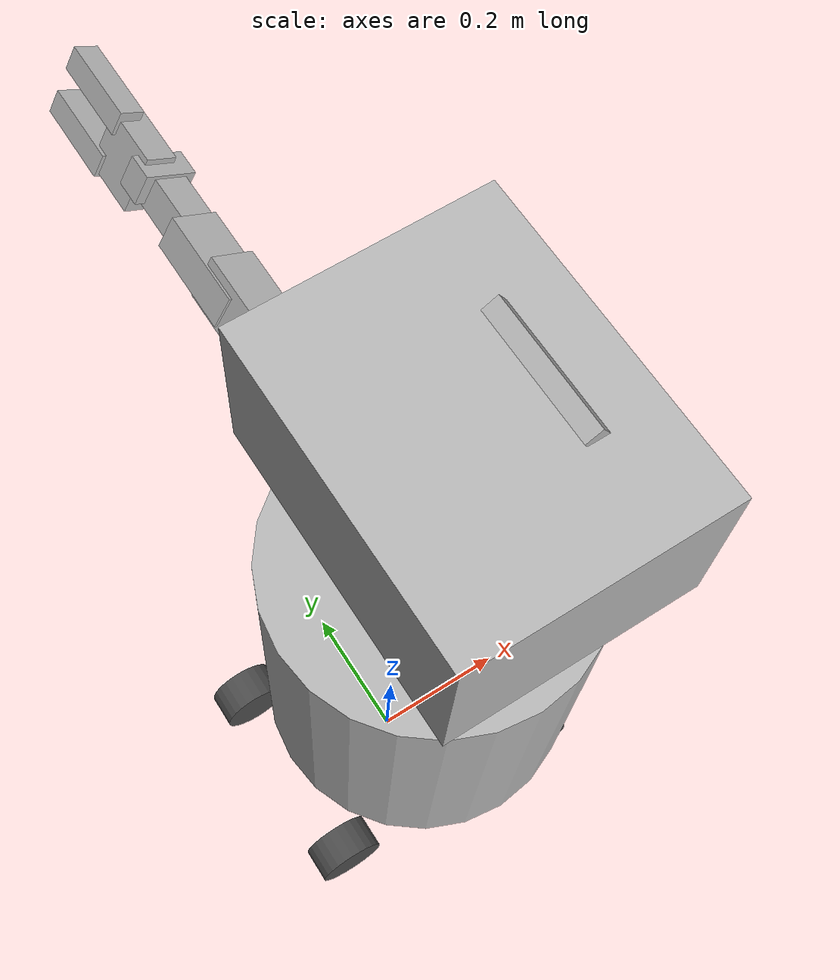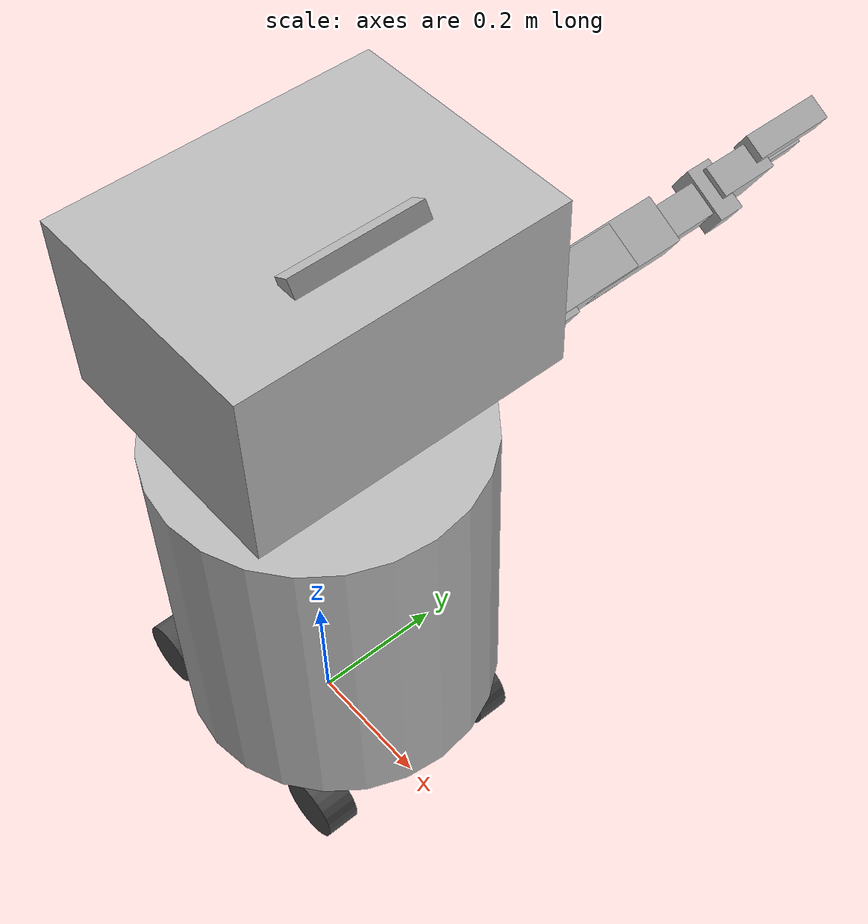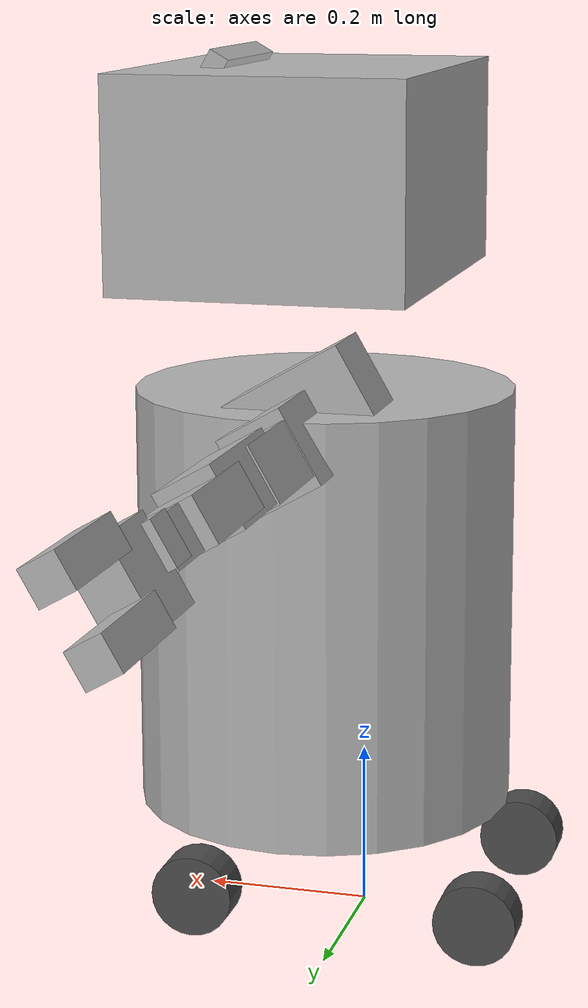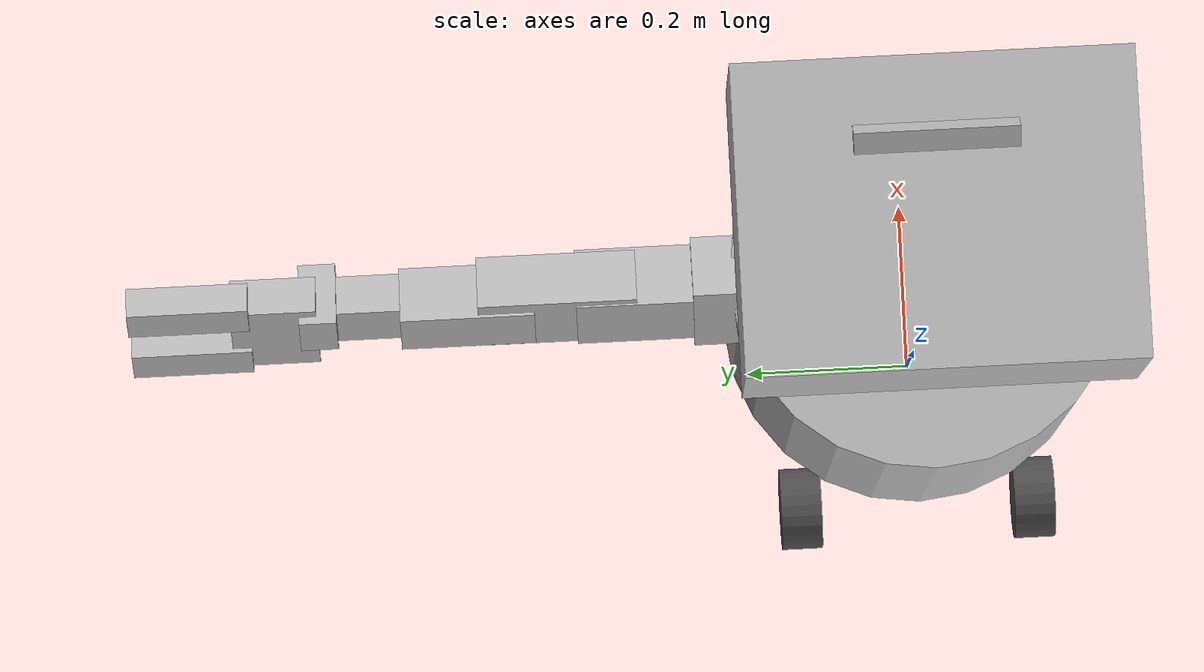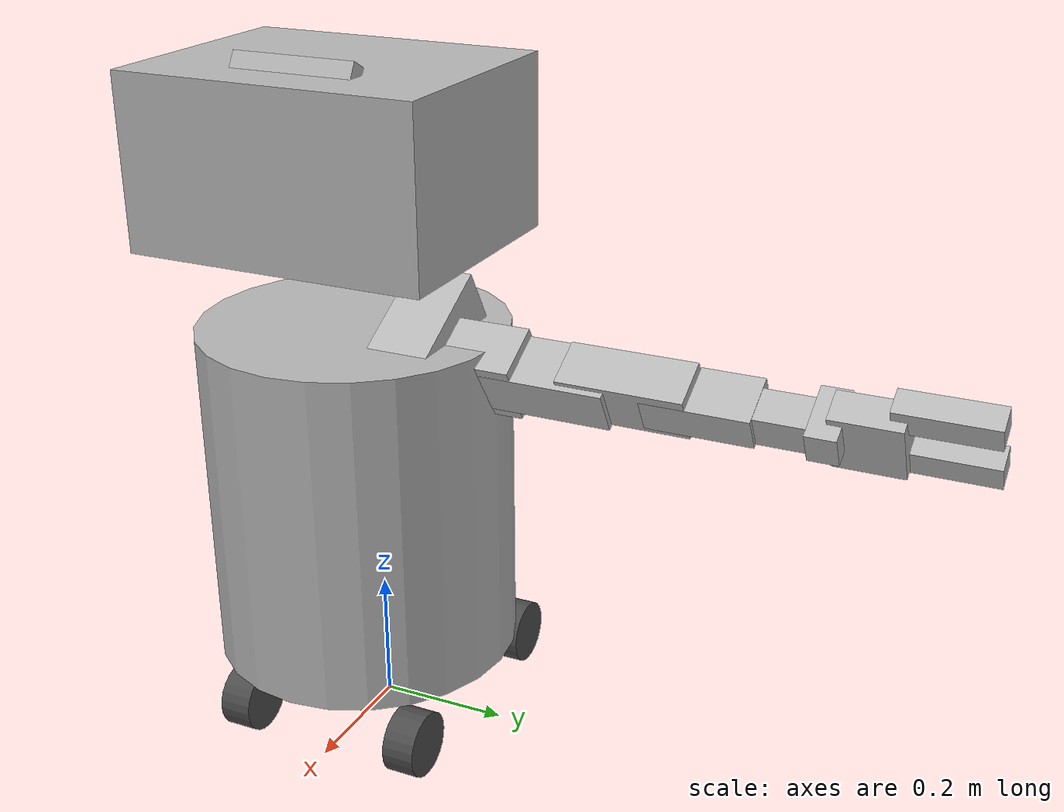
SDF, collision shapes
<sdf version="1.6">
 <model name="mbot">
  <link name="base_link">
   <inertial>
    <pose>-1e-06 2e-06 0.000729 0 -0 0</pose>
    <mass>40.241</mass>
    <inertia>
     <ixx>1.52277</ixx>
     <ixy>5.81e-06</ixy>
     <ixz>0</ixz>
     <iyy>3.15312</iyy>
     <iyz>0.00753425</iyz>
     <izz>3.07233</izz>
    </inertia>
   </inertial>
   <sensor name="rear_hokuyo_sensor" type="ray">
    <visualize>0</visualize>
    <update_rate>34.5</update_rate>
    <ray>
     <scan>
      <horizontal>
       <samples>720</samples>
       <resolution>1</resolution>
       <min_angle>-1.5708</min_angle>
       <max_angle>1.5708</max_angle>
      </horizontal>
      <vertical><samples>1</samples><min_angle>0</min_angle><max_angle>0</max_angle></vertical>
     </scan>
     <range><min>0.023</min><max>60</max><resolution>0.001</resolution></range>
     <noise><type>gaussian</type><mean>0</mean><stddev>0.01</stddev></noise>
    </ray>
    <plugin name="gazebo_ros_rear_hokuyo_controller" filename="libgazebo_ros_laser.so">
     <topicName>/scan_rear</topicName>
     <frameName>base_laser_rear_link</frameName>
     <robotNamespace>/</robotNamespace>
    </plugin>
    <pose>-0.2795 0 0.1335 -3.14159 -0 -3.14159</pose>
   </sensor>
   <sensor name="front_hokuyo_sensor" type="ray">
    <visualize>0</visualize>
    <update_rate>4.3</update_rate>
    <ray>
     <scan>
      <horizontal>
       <samples>512</samples>
       <resolution>1</resolution>
       <min_angle>-1.5708</min_angle>
       <max_angle>1.5708</max_angle>
      </horizontal>
      <vertical><samples>1</samples><min_angle>0</min_angle><max_angle>0</max_angle></vertical>
     </scan>
     <range><min>0.0199999</min><max>5.6</max><resolution>0.001</resolution></range>
     <noise><type>gaussian</type><mean>0</mean><stddev>0.01</stddev></noise>
    </ray>
    <plugin name="gazebo_ros_front_hokuyo_controller" filename="libgazebo_ros_laser.so">
     <topicName>/scan_front</topicName>
     <frameName>base_laser_front_link</frameName>
     <robotNamespace>/</robotNamespace>
    </plugin>
    <pose>0.2785 0 0.1335 0 -0 0</pose>
   </sensor>
   <visual name="base_link_visual">
    <pose>0 0 0.025 0 -0 0</pose>
    <geometry><mesh><uri>file://isr-testbed/mbot/mbot_body/mbot_body.dae</uri></mesh></geometry>
    <material>
     <script>
      <name>Gazebo/DepthMapVS</name>
      <uri>package://mbot_description/media/materials/scripts/gazebo.material</uri>
     </script>
     <shader type="vertex"><normal_map>__default__</normal_map></shader>
    </material>
   </visual>
   <collision name="base_link_collision">
    <pose>0.05 0 0.4 0 -0 0</pose>
    <geometry><cylinder><radius>0.23</radius><length>0.515</length></cylinder></geometry>
    <surface>
     <friction>
      <ode><mu>1</mu><mu2>1</mu2><fdir1>0 0 0</fdir1><slip1>0</slip1><slip2>0</slip2></ode>
      <torsional>
       <coefficient>1</coefficient>
       <patch_radius>0</patch_radius>
       <surface_radius>0</surface_radius>
       <use_patch_radius>1</use_patch_radius>
       <ode><slip>0</slip></ode>
      </torsional>
     </friction>
     <bounce><restitution_coefficient>0</restitution_coefficient><threshold>1e+06</threshold></bounce>
     <contact>
      <collide_without_contact>0</collide_without_contact>
      <collide_without_contact_bitmask>1</collide_without_contact_bitmask>
      <collide_bitmask>1</collide_bitmask>
      <ode>
       <soft_cfm>0</soft_cfm>
       <soft_erp>0.2</soft_erp>
       <kp>1e+13</kp>
       <kd>1</kd>
       <max_vel>0.01</max_vel>
       <min_depth>0</min_depth>
      </ode>
      <bullet>
       <split_impulse>1</split_impulse>
       <split_impulse_penetration_threshold>-0.01</split_impulse_penetration_threshold>
       <soft_cfm>0</soft_cfm>
       <soft_erp>0.2</soft_erp>
       <kp>1e+13</kp>
       <kd>1</kd>
      </bullet>
     </contact>
    </surface>
   </collision>
   <collision name="base_link_fixed_joint_lump__left_arm_base_link_collision_1">
    <pose>0.033028 0.117 0.625729 1.5708 1.04934 3.14159</pose>
    <geometry><box><size>0.154 0.177 0.094</size></box></geometry>
    <surface>
     <friction>
      <ode><mu>1</mu><mu2>1</mu2><fdir1>0 0 0</fdir1><slip1>0</slip1><slip2>0</slip2></ode>
      <torsional>
       <coefficient>1</coefficient>
       <patch_radius>0</patch_radius>
       <surface_radius>0</surface_radius>
       <use_patch_radius>1</use_patch_radius>
       <ode><slip>0</slip></ode>
      </torsional>
     </friction>
     <bounce><restitution_coefficient>0</restitution_coefficient><threshold>1e+06</threshold></bounce>
     <contact>
      <collide_without_contact>0</collide_without_contact>
      <collide_without_contact_bitmask>1</collide_without_contact_bitmask>
      <collide_bitmask>1</collide_bitmask>
      <ode>
       <soft_cfm>0</soft_cfm>
       <soft_erp>0.2</soft_erp>
       <kp>1e+13</kp>
       <kd>1</kd>
       <max_vel>0.01</max_vel>
       <min_depth>0</min_depth>
      </ode>
      <bullet>
       <split_impulse>1</split_impulse>
       <split_impulse_penetration_threshold>-0.01</split_impulse_penetration_threshold>
       <soft_cfm>0</soft_cfm>
       <soft_erp>0.2</soft_erp>
       <kp>1e+13</kp>
       <kd>1</kd>
      </bullet>
     </contact>
    </surface>
   </collision>
  </link>
  <link name="front_left_wheel_link">
   <pose>-0.175 0.14429 0.05 0 -0 0</pose>
   <inertial>
    <mass>2.3</mass>
    <inertia>
     <ixx>0.0033212</ixx>
     <ixy>0</ixy>
     <ixz>0</ixz>
     <iyy>0.0066424</iyy>
     <iyz>0</iyz>
     <izz>0.0033212</izz>
    </inertia>
   </inertial>
   <visual name="front_left_wheel_link_visual">
    <pose>0 0 0 1.5708 -0 0</pose>
    <geometry><cylinder><length>0.05</length><radius>0.05</radius></cylinder></geometry>
    <material>
     <script><name>Gazebo/DarkGrey</name><uri>file://media/materials/scripts/gazebo.material</uri></script>
     <ambient>0.175 0.175 0.175 1</ambient>
     <diffuse>0.175 0.175 0.175 1</diffuse>
     <specular>0.175 0.175 0.175 1</specular>
     <emissive>0 0 0 1</emissive>
    </material>
   </visual>
   <collision name="front_left_wheel_link_collision">
    <pose>0 0 0 1.5708 -0 0</pose>
    <geometry><cylinder><radius>0.05</radius><length>0.05</length></cylinder></geometry>
    <surface>
     <friction>
      <ode><mu>0</mu><mu2>0</mu2><fdir1>0 0 0</fdir1><slip1>0</slip1><slip2>0</slip2></ode>
      <torsional>
       <coefficient>1</coefficient>
       <patch_radius>0</patch_radius>
       <surface_radius>0</surface_radius>
       <use_patch_radius>1</use_patch_radius>
       <ode><slip>0</slip></ode>
      </torsional>
     </friction>
     <bounce><restitution_coefficient>0</restitution_coefficient><threshold>1e+06</threshold></bounce>
     <contact>
      <collide_without_contact>0</collide_without_contact>
      <collide_without_contact_bitmask>1</collide_without_contact_bitmask>
      <collide_bitmask>1</collide_bitmask>
      <ode>
       <soft_cfm>0</soft_cfm>
       <soft_erp>0.2</soft_erp>
       <kp>1e+13</kp>
       <kd>1</kd>
       <max_vel>0.01</max_vel>
       <min_depth>0</min_depth>
      </ode>
      <bullet>
       <split_impulse>1</split_impulse>
       <split_impulse_penetration_threshold>-0.01</split_impulse_penetration_threshold>
       <soft_cfm>0</soft_cfm>
       <soft_erp>0.2</soft_erp>
       <kp>1e+13</kp>
       <kd>1</kd>
      </bullet>
     </contact>
    </surface>
   </collision>
  </link>
  <link name="front_right_wheel_link">
   <pose>0.175 0.14429 0.05 0 -0 0</pose>
   <inertial>
    <mass>2.3</mass>
    <inertia>
     <ixx>0.0033212</ixx>
     <ixy>0</ixy>
     <ixz>0</ixz>
     <iyy>0.0066424</iyy>
     <iyz>0</iyz>
     <izz>0.0033212</izz>
    </inertia>
   </inertial>
   <visual name="front_right_wheel_link_visual">
    <pose>0 0 0 1.5708 -0 0</pose>
    <geometry><cylinder><length>0.05</length><radius>0.05</radius></cylinder></geometry>
    <material>
     <script><name>Gazebo/DarkGrey</name><uri>file://media/materials/scripts/gazebo.material</uri></script>
     <ambient>0.175 0.175 0.175 1</ambient>
     <diffuse>0.175 0.175 0.175 1</diffuse>
     <specular>0.175 0.175 0.175 1</specular>
     <emissive>0 0 0 1</emissive>
    </material>
   </visual>
   <collision name="front_right_wheel_link_collision">
    <pose>0 0 0 1.5708 -0 0</pose>
    <geometry><cylinder><radius>0.05</radius><length>0.05</length></cylinder></geometry>
    <surface>
     <friction>
      <ode><mu>0</mu><mu2>0</mu2><fdir1>0 0 0</fdir1><slip1>0</slip1><slip2>0</slip2></ode>
      <torsional>
       <coefficient>1</coefficient>
       <patch_radius>0</patch_radius>
       <surface_radius>0</surface_radius>
       <use_patch_radius>1</use_patch_radius>
       <ode><slip>0</slip></ode>
      </torsional>
     </friction>
     <bounce><restitution_coefficient>0</restitution_coefficient><threshold>1e+06</threshold></bounce>
     <contact>
      <collide_without_contact>0</collide_without_contact>
      <collide_without_contact_bitmask>1</collide_without_contact_bitmask>
      <collide_bitmask>1</collide_bitmask>
      <ode>
       <soft_cfm>0</soft_cfm>
       <soft_erp>0.2</soft_erp>
       <kp>1e+13</kp>
       <kd>1</kd>
       <max_vel>0.01</max_vel>
       <min_depth>0</min_depth>
      </ode>
      <bullet>
       <split_impulse>1</split_impulse>
       <split_impulse_penetration_threshold>-0.01</split_impulse_penetration_threshold>
       <soft_cfm>0</soft_cfm>
       <soft_erp>0.2</soft_erp>
       <kp>1e+13</kp>
       <kd>1</kd>
      </bullet>
     </contact>
    </surface>
   </collision>
  </link>
  <link name="head_camera_model_link">
   <pose>0.16 -0 1.04 0 1.05 0</pose>
   <inertial>
    <mass>0.2</mass>
    <inertia>
     <ixx>0.00058083</ixx>
     <ixy>0</ixy>
     <ixz>0</ixz>
     <iyy>3.0833e-05</iyy>
     <iyz>0</iyz>
     <izz>0.00059083</izz>
    </inertia>
   </inertial>
   <sensor name="head_camera" type="depth">
    <always_on>1</always_on>
    <update_rate>20</update_rate>
    <camera name="__default__">
     <horizontal_fov>1.0472</horizontal_fov>
     <image><format>B8G8R8</format><width>640</width><height>480</height></image>
     <clip><near>0.05</near><far>8</far></clip>
    </camera>
    <plugin name="head_camera_camera_controller" filename="libgazebo_ros_openni_kinect.so">
     <cameraName>head_camera</cameraName>
     <alwaysOn>true</alwaysOn>
     <updateRate>10</updateRate>
     <imageTopicName>rgb/image_raw</imageTopicName>
     <depthImageTopicName>depth/image_raw</depthImageTopicName>
     <pointCloudTopicName>depth_registered/points</pointCloudTopicName>
     <cameraInfoTopicName>rgb/camera_info</cameraInfoTopicName>
     <depthImageCameraInfoTopicName>depth/camera_info</depthImageCameraInfoTopicName>
     <frameName>head_camera_depth_optical_frame</frameName>
     <baseline>0.1</baseline>
     <distortion_k1>0.0</distortion_k1>
     <distortion_k2>0.0</distortion_k2>
     <distortion_k3>0.0</distortion_k3>
     <distortion_t1>0.0</distortion_t1>
     <distortion_t2>0.0</distortion_t2>
     <pointCloudCutoff>0.4</pointCloudCutoff>
     <robotNamespace>/</robotNamespace>
    </plugin>
    <pose>0.076011 0.048975 0.02001 -0.01 0.04 0.03</pose>
   </sensor>
   <visual name="head_camera_model_link_visual">
    <pose>0.0175 0 0.0205 0 -0 0</pose>
    <geometry>
     <mesh><scale>1 1 1</scale><uri>file://isr-testbed/mbot/sensors/asus_camera_simple.dae</uri></mesh>
    </geometry>
   </visual>
   <collision name="head_camera_model_link_collision">
    <geometry><box><size>0.035 0.185 0.025</size></box></geometry>
    <surface>
     <friction>
      <ode><mu>1</mu><mu2>1</mu2><fdir1>0 0 0</fdir1><slip1>0</slip1><slip2>0</slip2></ode>
      <torsional>
       <coefficient>1</coefficient>
       <patch_radius>0</patch_radius>
       <surface_radius>0</surface_radius>
       <use_patch_radius>1</use_patch_radius>
       <ode><slip>0</slip></ode>
      </torsional>
     </friction>
     <bounce><restitution_coefficient>0</restitution_coefficient><threshold>1e+06</threshold></bounce>
     <contact>
      <collide_without_contact>0</collide_without_contact>
      <collide_without_contact_bitmask>1</collide_without_contact_bitmask>
      <collide_bitmask>1</collide_bitmask>
      <ode>
       <soft_cfm>0</soft_cfm>
       <soft_erp>0.2</soft_erp>
       <kp>1e+13</kp>
       <kd>1</kd>
       <max_vel>0.01</max_vel>
       <min_depth>0</min_depth>
      </ode>
      <bullet>
       <split_impulse>1</split_impulse>
       <split_impulse_penetration_threshold>-0.01</split_impulse_penetration_threshold>
       <soft_cfm>0</soft_cfm>
       <soft_erp>0.2</soft_erp>
       <kp>1e+13</kp>
       <kd>1</kd>
      </bullet>
     </contact>
    </surface>
   </collision>
  </link>
  <link name="head_link">
   <pose>0.05 -0 0.765 0 -0 0</pose>
   <inertial>
    <pose>0.002353 0 0.00098 0 -0 0</pose>
    <mass>10.2</mass>
    <inertia>
     <ixx>0.101076</ixx>
     <ixy>0</ixy>
     <ixz>0</ixz>
     <iyy>0.103345</iyy>
     <iyz>0</iyz>
     <izz>0.103409</izz>
    </inertia>
   </inertial>
   <sensor name="neck_camera" type="depth">
    <always_on>1</always_on>
    <update_rate>20</update_rate>
    <camera name="__default__">
     <horizontal_fov>1.0472</horizontal_fov>
     <image><format>B8G8R8</format><width>640</width><height>480</height></image>
     <clip><near>0.05</near><far>8</far></clip>
    </camera>
    <plugin name="neck_camera_camera_controller" filename="libgazebo_ros_openni_kinect.so">
     <cameraName>neck_camera</cameraName>
     <alwaysOn>true</alwaysOn>
     <updateRate>10</updateRate>
     <imageTopicName>rgb/image_raw</imageTopicName>
     <depthImageTopicName>depth/image_raw</depthImageTopicName>
     <pointCloudTopicName>depth_registered/points</pointCloudTopicName>
     <cameraInfoTopicName>rgb/camera_info</cameraInfoTopicName>
     <depthImageCameraInfoTopicName>depth/camera_info</depthImageCameraInfoTopicName>
     <frameName>neck_camera_depth_optical_frame</frameName>
     <baseline>0.1</baseline>
     <distortion_k1>0.0</distortion_k1>
     <distortion_k2>0.0</distortion_k2>
     <distortion_k3>0.0</distortion_k3>
     <distortion_t1>0.0</distortion_t1>
     <distortion_t2>0.0</distortion_t2>
     <pointCloudCutoff>0.4</pointCloudCutoff>
     <robotNamespace>/</robotNamespace>
    </plugin>
    <pose>0.177476 0.048777 0.044032 -0.00322 0.797828 0.093157</pose>
   </sensor>
   <visual name="head_link_visual">
    <geometry><mesh><uri>file://isr-testbed/mbot/mbot_head.dae</uri></mesh></geometry>
    <material>
     <script><name>Gazebo/DepthMapVS</name><uri>file://media/materials/scripts/gazebo.material</uri></script>
     <shader type="vertex"><normal_map>__default__</normal_map></shader>
    </material>
   </visual>
   <collision name="head_link_collision">
    <pose>0.025 0 0.15 0 -0 0</pose>
    <geometry><box><size>0.35 0.45 0.25</size></box></geometry>
    <surface>
     <friction>
      <ode><mu>1</mu><mu2>1</mu2><fdir1>0 0 0</fdir1><slip1>0</slip1><slip2>0</slip2></ode>
      <torsional>
       <coefficient>1</coefficient>
       <patch_radius>0</patch_radius>
       <surface_radius>0</surface_radius>
       <use_patch_radius>1</use_patch_radius>
       <ode><slip>0</slip></ode>
      </torsional>
     </friction>
     <bounce><restitution_coefficient>0</restitution_coefficient><threshold>1e+06</threshold></bounce>
     <contact>
      <collide_without_contact>0</collide_without_contact>
      <collide_without_contact_bitmask>1</collide_without_contact_bitmask>
      <collide_bitmask>1</collide_bitmask>
      <ode>
       <soft_cfm>0</soft_cfm>
       <soft_erp>0.2</soft_erp>
       <kp>1e+13</kp>
       <kd>1</kd>
       <max_vel>0.01</max_vel>
       <min_depth>0</min_depth>
      </ode>
      <bullet>
       <split_impulse>1</split_impulse>
       <split_impulse_penetration_threshold>-0.01</split_impulse_penetration_threshold>
       <soft_cfm>0</soft_cfm>
       <soft_erp>0.2</soft_erp>
       <kp>1e+13</kp>
       <kd>1</kd>
      </bullet>
     </contact>
    </surface>
   </collision>
   <collision name="head_link_fixed_joint_lump__neck_camera_model_link_collision_1">
    <pose>0.12 0 0.05 0 0.8 0</pose>
    <geometry><box><size>0.035 0.185 0.025</size></box></geometry>
    <surface>
     <friction>
      <ode><mu>1</mu><mu2>1</mu2><fdir1>0 0 0</fdir1><slip1>0</slip1><slip2>0</slip2></ode>
      <torsional>
       <coefficient>1</coefficient>
       <patch_radius>0</patch_radius>
       <surface_radius>0</surface_radius>
       <use_patch_radius>1</use_patch_radius>
       <ode><slip>0</slip></ode>
      </torsional>
     </friction>
     <bounce><restitution_coefficient>0</restitution_coefficient><threshold>1e+06</threshold></bounce>
     <contact>
      <collide_without_contact>0</collide_without_contact>
      <collide_without_contact_bitmask>1</collide_without_contact_bitmask>
      <collide_bitmask>1</collide_bitmask>
      <ode>
       <soft_cfm>0</soft_cfm>
       <soft_erp>0.2</soft_erp>
       <kp>1e+13</kp>
       <kd>1</kd>
       <max_vel>0.01</max_vel>
       <min_depth>0</min_depth>
      </ode>
      <bullet>
       <split_impulse>1</split_impulse>
       <split_impulse_penetration_threshold>-0.01</split_impulse_penetration_threshold>
       <soft_cfm>0</soft_cfm>
       <soft_erp>0.2</soft_erp>
       <kp>1e+13</kp>
       <kd>1</kd>
      </bullet>
     </contact>
    </surface>
   </collision>
  </link>
  <link name="left_arm_elbow_pitch">
   <pose>0.034445 0.4888 0.605309 1.5708 1.04934 3.14159</pose>
   <inertial>
    <mass>0.001</mass>
    <inertia><ixx>0.0327</ixx><ixy>0</ixy><ixz>0</ixz><iyy>0.0327</iyy><iyz>0</iyz><izz>0.0327</izz></inertia>
   </inertial>
   <visual name="left_arm_elbow_pitch_visual">
    <pose>0 0 0 1.5708 -0 -3.14159</pose>
    <geometry><mesh><scale>1 1 1</scale><uri>file://isr-testbed/mbot/elbow_pitch.dae</uri></mesh></geometry>
   </visual>
   <collision name="left_arm_elbow_pitch_collision">
    <pose>-0.017 0.004 0.0461 1.5708 -0 -3.14159</pose>
    <geometry><box><size>0.0549 0.1557 0.076</size></box></geometry>
    <surface>
     <friction>
      <ode><mu>1</mu><mu2>1</mu2><fdir1>0 0 0</fdir1><slip1>0</slip1><slip2>0</slip2></ode>
      <torsional>
       <coefficient>1</coefficient>
       <patch_radius>0</patch_radius>
       <surface_radius>0</surface_radius>
       <use_patch_radius>1</use_patch_radius>
       <ode><slip>0</slip></ode>
      </torsional>
     </friction>
     <bounce><restitution_coefficient>0</restitution_coefficient><threshold>1e+06</threshold></bounce>
     <contact>
      <collide_without_contact>0</collide_without_contact>
      <collide_without_contact_bitmask>1</collide_without_contact_bitmask>
      <collide_bitmask>1</collide_bitmask>
      <ode>
       <soft_cfm>0</soft_cfm>
       <soft_erp>0.2</soft_erp>
       <kp>1e+13</kp>
       <kd>1</kd>
       <max_vel>0.01</max_vel>
       <min_depth>0</min_depth>
      </ode>
      <bullet>
       <split_impulse>1</split_impulse>
       <split_impulse_penetration_threshold>-0.01</split_impulse_penetration_threshold>
       <soft_cfm>0</soft_cfm>
       <soft_erp>0.2</soft_erp>
       <kp>1e+13</kp>
       <kd>1</kd>
      </bullet>
     </contact>
    </surface>
   </collision>
  </link>
  <link name="left_arm_elbow_yaw">
   <pose>0.058571 0.58626 0.61117 1.5708 1.04934 3.14159</pose>
   <inertial>
    <mass>0.001</mass>
    <inertia><ixx>0.0227</ixx><ixy>0</ixy><ixz>0</ixz><iyy>0.0227</iyy><iyz>0</iyz><izz>0.0227</izz></inertia>
   </inertial>
   <visual name="left_arm_elbow_yaw_visual">
    <pose>0 0 0 1.5708 -0 1.5708</pose>
    <geometry><mesh><scale>1 1 1</scale><uri>file://isr-testbed/mbot/elbow_yaw.dae</uri></mesh></geometry>
   </visual>
   <collision name="left_arm_elbow_yaw_collision">
    <pose>0 0.0172 0.047 1.5708 -0 1.5708</pose>
    <geometry><box><size>0.0535 0.116 0.053</size></box></geometry>
    <surface>
     <friction>
      <ode><mu>1</mu><mu2>1</mu2><fdir1>0 0 0</fdir1><slip1>0</slip1><slip2>0</slip2></ode>
      <torsional>
       <coefficient>1</coefficient>
       <patch_radius>0</patch_radius>
       <surface_radius>0</surface_radius>
       <use_patch_radius>1</use_patch_radius>
       <ode><slip>0</slip></ode>
      </torsional>
     </friction>
     <bounce><restitution_coefficient>0</restitution_coefficient><threshold>1e+06</threshold></bounce>
     <contact>
      <collide_without_contact>0</collide_without_contact>
      <collide_without_contact_bitmask>1</collide_without_contact_bitmask>
      <collide_bitmask>1</collide_bitmask>
      <ode>
       <soft_cfm>0</soft_cfm>
       <soft_erp>0.2</soft_erp>
       <kp>1e+13</kp>
       <kd>1</kd>
       <max_vel>0.01</max_vel>
       <min_depth>0</min_depth>
      </ode>
      <bullet>
       <split_impulse>1</split_impulse>
       <split_impulse_penetration_threshold>-0.01</split_impulse_penetration_threshold>
       <soft_cfm>0</soft_cfm>
       <soft_erp>0.2</soft_erp>
       <kp>1e+13</kp>
       <kd>1</kd>
      </bullet>
     </contact>
    </surface>
   </collision>
  </link>
  <link name="left_arm_gripper_finger1">
   <pose>0.031774 0.807485 0.667108 -3.14159 1.04934 3.14159</pose>
   <inertial>
    <mass>0.001</mass>
    <inertia><ixx>0.0027</ixx><ixy>0</ixy><ixz>0</ixz><iyy>0.0027</iyy><iyz>0</iyz><izz>0.0027</izz></inertia>
   </inertial>
   <visual name="left_arm_gripper_finger1_visual">
    <geometry><mesh><scale>1 1 1</scale><uri>file://isr-testbed/mbot/ist_finger.dae</uri></mesh></geometry>
   </visual>
   <collision name="left_arm_gripper_finger1_collision">
    <pose>-0.003 0.05 0.015 0 -0 0</pose>
    <geometry><box><size>0.04 0.14 0.04</size></box></geometry>
    <surface>
     <friction>
      <ode><mu>1</mu><mu2>1</mu2><fdir1>0 0 0</fdir1><slip1>0</slip1><slip2>0</slip2></ode>
      <torsional>
       <coefficient>1</coefficient>
       <patch_radius>0</patch_radius>
       <surface_radius>0</surface_radius>
       <use_patch_radius>1</use_patch_radius>
       <ode><slip>0</slip></ode>
      </torsional>
     </friction>
     <bounce><restitution_coefficient>0</restitution_coefficient><threshold>1e+06</threshold></bounce>
     <contact>
      <collide_without_contact>0</collide_without_contact>
      <collide_without_contact_bitmask>1</collide_without_contact_bitmask>
      <collide_bitmask>1</collide_bitmask>
      <ode>
       <soft_cfm>0</soft_cfm>
       <soft_erp>0.2</soft_erp>
       <kp>1e+13</kp>
       <kd>1</kd>
       <max_vel>0.01</max_vel>
       <min_depth>0</min_depth>
      </ode>
      <bullet>
       <split_impulse>1</split_impulse>
       <split_impulse_penetration_threshold>-0.01</split_impulse_penetration_threshold>
       <soft_cfm>0</soft_cfm>
       <soft_erp>0.2</soft_erp>
       <kp>1e+13</kp>
       <kd>1</kd>
      </bullet>
     </contact>
    </surface>
   </collision>
  </link>
  <link name="left_arm_gripper_finger2">
   <pose>0.020352 0.807485 0.587001 0 -1.04934 0</pose>
   <inertial>
    <mass>0.001</mass>
    <inertia><ixx>0.0027</ixx><ixy>0</ixy><ixz>0</ixz><iyy>0.0027</iyy><iyz>0</iyz><izz>0.0027</izz></inertia>
   </inertial>
   <visual name="left_arm_gripper_finger2_visual">
    <geometry><mesh><scale>1 1 1</scale><uri>file://isr-testbed/mbot/ist_finger.dae</uri></mesh></geometry>
   </visual>
   <collision name="left_arm_gripper_finger2_collision">
    <pose>-0.003 0.05 0.015 0 -0 0</pose>
    <geometry><box><size>0.04 0.14 0.04</size></box></geometry>
    <surface>
     <friction>
      <ode><mu>1</mu><mu2>1</mu2><fdir1>0 0 0</fdir1><slip1>0</slip1><slip2>0</slip2></ode>
      <torsional>
       <coefficient>1</coefficient>
       <patch_radius>0</patch_radius>
       <surface_radius>0</surface_radius>
       <use_patch_radius>1</use_patch_radius>
       <ode><slip>0</slip></ode>
      </torsional>
     </friction>
     <bounce><restitution_coefficient>0</restitution_coefficient><threshold>1e+06</threshold></bounce>
     <contact>
      <collide_without_contact>0</collide_without_contact>
      <collide_without_contact_bitmask>1</collide_without_contact_bitmask>
      <collide_bitmask>1</collide_bitmask>
      <ode>
       <soft_cfm>0</soft_cfm>
       <soft_erp>0.2</soft_erp>
       <kp>1e+13</kp>
       <kd>1</kd>
       <max_vel>0.01</max_vel>
       <min_depth>0</min_depth>
      </ode>
      <bullet>
       <split_impulse>1</split_impulse>
       <split_impulse_penetration_threshold>-0.01</split_impulse_penetration_threshold>
       <soft_cfm>0</soft_cfm>
       <soft_erp>0.2</soft_erp>
       <kp>1e+13</kp>
       <kd>1</kd>
      </bullet>
     </contact>
    </surface>
   </collision>
  </link>
  <link name="left_arm_ist_gripper_mount">
   <pose>0.042966 0.709485 0.620141 -1.5708 0.521457 0</pose>
   <inertial>
    <mass>0.001</mass>
    <inertia><ixx>0.0027</ixx><ixy>0</ixy><ixz>0</ixz><iyy>0.0027</iyy><iyz>0</iyz><izz>0.0027</izz></inertia>
   </inertial>
   <visual name="left_arm_ist_gripper_mount_visual">
    <pose>-0.018 -0.04 -0.019 0 -0 0</pose>
    <geometry><mesh><scale>1 1 1</scale><uri>file://isr-testbed/mbot/ist_gripper_mount.dae</uri></mesh></geometry>
   </visual>
   <visual name="left_arm_ist_gripper_mount_fixed_joint_lump__left_arm_virtual_endeffector_visual_1">
    <pose>0 0 0.17 0 -0 0</pose>
    <geometry><sphere><radius>0.002</radius></sphere></geometry>
   </visual>
   <collision name="left_arm_ist_gripper_mount_collision">
    <pose>-0.007 0.008 0.05 -3.14159 -0 -1.5708</pose>
    <geometry><box><size>0.1 0.05 0.1</size></box></geometry>
    <surface>
     <friction>
      <ode><mu>1</mu><mu2>1</mu2><fdir1>0 0 0</fdir1><slip1>0</slip1><slip2>0</slip2></ode>
      <torsional>
       <coefficient>1</coefficient>
       <patch_radius>0</patch_radius>
       <surface_radius>0</surface_radius>
       <use_patch_radius>1</use_patch_radius>
       <ode><slip>0</slip></ode>
      </torsional>
     </friction>
     <bounce><restitution_coefficient>0</restitution_coefficient><threshold>1e+06</threshold></bounce>
     <contact>
      <collide_without_contact>0</collide_without_contact>
      <collide_without_contact_bitmask>1</collide_without_contact_bitmask>
      <collide_bitmask>1</collide_bitmask>
      <ode>
       <soft_cfm>0</soft_cfm>
       <soft_erp>0.2</soft_erp>
       <kp>1e+13</kp>
       <kd>1</kd>
       <max_vel>0.01</max_vel>
       <min_depth>0</min_depth>
      </ode>
      <bullet>
       <split_impulse>1</split_impulse>
       <split_impulse_penetration_threshold>-0.01</split_impulse_penetration_threshold>
       <soft_cfm>0</soft_cfm>
       <soft_erp>0.2</soft_erp>
       <kp>1e+13</kp>
       <kd>1</kd>
      </bullet>
     </contact>
    </surface>
   </collision>
  </link>
  <link name="left_arm_shoulder_pitch">
   <pose>0.032788 0.2475 0.602225 1.5708 1.04934 3.14159</pose>
   <inertial>
    <mass>0.001</mass>
    <inertia><ixx>0.0827</ixx><ixy>0</ixy><ixz>0</ixz><iyy>0.0827</iyy><iyz>0</iyz><izz>0.0827</izz></inertia>
   </inertial>
   <visual name="left_arm_shoulder_pitch_visual">
    <pose>0 0 0 1.5708 -0 0</pose>
    <geometry><mesh><scale>1 1 1</scale><uri>file://isr-testbed/mbot/shoulder_pitch.dae</uri></mesh></geometry>
   </visual>
   <collision name="left_arm_shoulder_pitch_collision">
    <pose>-0.02 -0.001 0.064 1.5708 -0 0</pose>
    <geometry><box><size>0.0709 0.19363 0.083</size></box></geometry>
    <surface>
     <friction>
      <ode><mu>1</mu><mu2>1</mu2><fdir1>0 0 0</fdir1><slip1>0</slip1><slip2>0</slip2></ode>
      <torsional>
       <coefficient>1</coefficient>
       <patch_radius>0</patch_radius>
       <surface_radius>0</surface_radius>
       <use_patch_radius>1</use_patch_radius>
       <ode><slip>0</slip></ode>
      </torsional>
     </friction>
     <bounce><restitution_coefficient>0</restitution_coefficient><threshold>1e+06</threshold></bounce>
     <contact>
      <collide_without_contact>0</collide_without_contact>
      <collide_without_contact_bitmask>1</collide_without_contact_bitmask>
      <collide_bitmask>1</collide_bitmask>
      <ode>
       <soft_cfm>0</soft_cfm>
       <soft_erp>0.2</soft_erp>
       <kp>1e+13</kp>
       <kd>1</kd>
       <max_vel>0.01</max_vel>
       <min_depth>0</min_depth>
      </ode>
      <bullet>
       <split_impulse>1</split_impulse>
       <split_impulse_penetration_threshold>-0.01</split_impulse_penetration_threshold>
       <soft_cfm>0</soft_cfm>
       <soft_erp>0.2</soft_erp>
       <kp>1e+13</kp>
       <kd>1</kd>
      </bullet>
     </contact>
    </surface>
   </collision>
  </link>
  <link name="left_arm_shoulder_roll">
   <pose>0.043 0.12315 0.62 1.5708 1.04934 3.14159</pose>
   <inertial>
    <mass>0.001</mass>
    <inertia><ixx>0.1027</ixx><ixy>0</ixy><ixz>0</ixz><iyy>0.1027</iyy><iyz>0</iyz><izz>0.1027</izz></inertia>
   </inertial>
   <visual name="left_arm_shoulder_roll_visual">
    <pose>0 0 0 1.5708 -0 0.384</pose>
    <geometry><mesh><scale>1 1 1</scale><uri>file://isr-testbed/mbot/shoulder_roll.dae</uri></mesh></geometry>
   </visual>
   <collision name="left_arm_shoulder_roll_collision">
    <pose>0 0 0.0587 1.5708 -0 0</pose>
    <geometry><box><size>0.09829 0.18143 0.08392</size></box></geometry>
    <surface>
     <friction>
      <ode><mu>1</mu><mu2>1</mu2><fdir1>0 0 0</fdir1><slip1>0</slip1><slip2>0</slip2></ode>
      <torsional>
       <coefficient>1</coefficient>
       <patch_radius>0</patch_radius>
       <surface_radius>0</surface_radius>
       <use_patch_radius>1</use_patch_radius>
       <ode><slip>0</slip></ode>
      </torsional>
     </friction>
     <bounce><restitution_coefficient>0</restitution_coefficient><threshold>1e+06</threshold></bounce>
     <contact>
      <collide_without_contact>0</collide_without_contact>
      <collide_without_contact_bitmask>1</collide_without_contact_bitmask>
      <collide_bitmask>1</collide_bitmask>
      <ode>
       <soft_cfm>0</soft_cfm>
       <soft_erp>0.2</soft_erp>
       <kp>1e+13</kp>
       <kd>1</kd>
       <max_vel>0.01</max_vel>
       <min_depth>0</min_depth>
      </ode>
      <bullet>
       <split_impulse>1</split_impulse>
       <split_impulse_penetration_threshold>-0.01</split_impulse_penetration_threshold>
       <soft_cfm>0</soft_cfm>
       <soft_erp>0.2</soft_erp>
       <kp>1e+13</kp>
       <kd>1</kd>
      </bullet>
     </contact>
    </surface>
   </collision>
  </link>
  <link name="left_arm_shoulder_yaw">
   <pose>0.061274 0.373 0.610655 1.5708 1.04934 3.14159</pose>
   <inertial>
    <mass>0.001</mass>
    <inertia><ixx>0.0627</ixx><ixy>0</ixy><ixz>0</ixz><iyy>0.0627</iyy><iyz>0</iyz><izz>0.0627</izz></inertia>
   </inertial>
   <visual name="left_arm_shoulder_yaw_visual">
    <pose>0 0 0 1.5708 0 -1.5708</pose>
    <geometry><mesh><scale>1 1 1</scale><uri>file://isr-testbed/mbot/shoulder_yaw.dae</uri></mesh></geometry>
   </visual>
   <collision name="left_arm_shoulder_yaw_collision">
    <pose>-0.003 0.0225 0.057 1.5708 0 -1.5708</pose>
    <geometry><box><size>0.0717 0.1846 0.0756</size></box></geometry>
    <surface>
     <friction>
      <ode><mu>1</mu><mu2>1</mu2><fdir1>0 0 0</fdir1><slip1>0</slip1><slip2>0</slip2></ode>
      <torsional>
       <coefficient>1</coefficient>
       <patch_radius>0</patch_radius>
       <surface_radius>0</surface_radius>
       <use_patch_radius>1</use_patch_radius>
       <ode><slip>0</slip></ode>
      </torsional>
     </friction>
     <bounce><restitution_coefficient>0</restitution_coefficient><threshold>1e+06</threshold></bounce>
     <contact>
      <collide_without_contact>0</collide_without_contact>
      <collide_without_contact_bitmask>1</collide_without_contact_bitmask>
      <collide_bitmask>1</collide_bitmask>
      <ode>
       <soft_cfm>0</soft_cfm>
       <soft_erp>0.2</soft_erp>
       <kp>1e+13</kp>
       <kd>1</kd>
       <max_vel>0.01</max_vel>
       <min_depth>0</min_depth>
      </ode>
      <bullet>
       <split_impulse>1</split_impulse>
       <split_impulse_penetration_threshold>-0.01</split_impulse_penetration_threshold>
       <soft_cfm>0</soft_cfm>
       <soft_erp>0.2</soft_erp>
       <kp>1e+13</kp>
       <kd>1</kd>
      </bullet>
     </contact>
    </surface>
   </collision>
  </link>
  <link name="left_arm_wrist_pitch">
   <pose>0.056044 0.65806 0.642906 -1.5708 -1.04934 0</pose>
   <inertial>
    <mass>0.001</mass>
    <inertia><ixx>0.0127</ixx><ixy>0</ixy><ixz>0</ixz><iyy>0.0127</iyy><iyz>0</iyz><izz>0.0127</izz></inertia>
   </inertial>
   <visual name="left_arm_wrist_pitch_visual">
    <pose>0 0 0 1.5708 -0 1.5708</pose>
    <geometry><mesh><scale>1 1 1</scale><uri>file://isr-testbed/mbot/wrist_pitch.dae</uri></mesh></geometry>
   </visual>
   <collision name="left_arm_wrist_pitch_collision">
    <pose>-0.02 0 0.05 1.5708 -0 1.5708</pose>
    <geometry><box><size>0.085 0.0435 0.05185</size></box></geometry>
    <surface>
     <friction>
      <ode><mu>1</mu><mu2>1</mu2><fdir1>0 0 0</fdir1><slip1>0</slip1><slip2>0</slip2></ode>
      <torsional>
       <coefficient>1</coefficient>
       <patch_radius>0</patch_radius>
       <surface_radius>0</surface_radius>
       <use_patch_radius>1</use_patch_radius>
       <ode><slip>0</slip></ode>
      </torsional>
     </friction>
     <bounce><restitution_coefficient>0</restitution_coefficient><threshold>1e+06</threshold></bounce>
     <contact>
      <collide_without_contact>0</collide_without_contact>
      <collide_without_contact_bitmask>1</collide_without_contact_bitmask>
      <collide_bitmask>1</collide_bitmask>
      <ode>
       <soft_cfm>0</soft_cfm>
       <soft_erp>0.2</soft_erp>
       <kp>1e+13</kp>
       <kd>1</kd>
       <max_vel>0.01</max_vel>
       <min_depth>0</min_depth>
      </ode>
      <bullet>
       <split_impulse>1</split_impulse>
       <split_impulse_penetration_threshold>-0.01</split_impulse_penetration_threshold>
       <soft_cfm>0</soft_cfm>
       <soft_erp>0.2</soft_erp>
       <kp>1e+13</kp>
       <kd>1</kd>
      </bullet>
     </contact>
    </surface>
   </collision>
  </link>
  <link name="rear_left_wheel_link">
   <pose>-0.175 -0.14429 0.05 0 -0 0</pose>
   <inertial>
    <mass>2.3</mass>
    <inertia>
     <ixx>0.0033212</ixx>
     <ixy>0</ixy>
     <ixz>0</ixz>
     <iyy>0.0066424</iyy>
     <iyz>0</iyz>
     <izz>0.0033212</izz>
    </inertia>
   </inertial>
   <visual name="rear_left_wheel_link_visual">
    <pose>0 0 0 1.5708 -0 0</pose>
    <geometry><cylinder><length>0.05</length><radius>0.05</radius></cylinder></geometry>
    <material>
     <script><name>Gazebo/DarkGrey</name><uri>file://media/materials/scripts/gazebo.material</uri></script>
     <ambient>0.175 0.175 0.175 1</ambient>
     <diffuse>0.175 0.175 0.175 1</diffuse>
     <specular>0.175 0.175 0.175 1</specular>
     <emissive>0 0 0 1</emissive>
    </material>
   </visual>
   <collision name="rear_left_wheel_link_collision">
    <pose>0 0 0 1.5708 -0 0</pose>
    <geometry><cylinder><radius>0.05</radius><length>0.05</length></cylinder></geometry>
    <surface>
     <friction>
      <ode><mu>0</mu><mu2>0</mu2><fdir1>0 0 0</fdir1><slip1>0</slip1><slip2>0</slip2></ode>
      <torsional>
       <coefficient>1</coefficient>
       <patch_radius>0</patch_radius>
       <surface_radius>0</surface_radius>
       <use_patch_radius>1</use_patch_radius>
       <ode><slip>0</slip></ode>
      </torsional>
     </friction>
     <bounce><restitution_coefficient>0</restitution_coefficient><threshold>1e+06</threshold></bounce>
     <contact>
      <collide_without_contact>0</collide_without_contact>
      <collide_without_contact_bitmask>1</collide_without_contact_bitmask>
      <collide_bitmask>1</collide_bitmask>
      <ode>
       <soft_cfm>0</soft_cfm>
       <soft_erp>0.2</soft_erp>
       <kp>1e+13</kp>
       <kd>1</kd>
       <max_vel>0.01</max_vel>
       <min_depth>0</min_depth>
      </ode>
      <bullet>
       <split_impulse>1</split_impulse>
       <split_impulse_penetration_threshold>-0.01</split_impulse_penetration_threshold>
       <soft_cfm>0</soft_cfm>
       <soft_erp>0.2</soft_erp>
       <kp>1e+13</kp>
       <kd>1</kd>
      </bullet>
     </contact>
    </surface>
   </collision>
  </link>
  <link name="rear_right_wheel_link">
   <pose>0.175 -0.14429 0.05 0 -0 0</pose>
   <inertial>
    <mass>2.3</mass>
    <inertia>
     <ixx>0.0033212</ixx>
     <ixy>0</ixy>
     <ixz>0</ixz>
     <iyy>0.0066424</iyy>
     <iyz>0</iyz>
     <izz>0.0033212</izz>
    </inertia>
   </inertial>
   <visual name="rear_right_wheel_link_visual">
    <pose>0 0 0 1.5708 -0 0</pose>
    <geometry><cylinder><length>0.05</length><radius>0.05</radius></cylinder></geometry>
    <material>
     <script><name>Gazebo/DarkGrey</name><uri>file://media/materials/scripts/gazebo.material</uri></script>
     <ambient>0.175 0.175 0.175 1</ambient>
     <diffuse>0.175 0.175 0.175 1</diffuse>
     <specular>0.175 0.175 0.175 1</specular>
     <emissive>0 0 0 1</emissive>
    </material>
   </visual>
   <collision name="rear_right_wheel_link_collision">
    <pose>0 0 0 1.5708 -0 0</pose>
    <geometry><cylinder><radius>0.05</radius><length>0.05</length></cylinder></geometry>
    <surface>
     <friction>
      <ode><mu>0</mu><mu2>0</mu2><fdir1>0 0 0</fdir1><slip1>0</slip1><slip2>0</slip2></ode>
      <torsional>
       <coefficient>1</coefficient>
       <patch_radius>0</patch_radius>
       <surface_radius>0</surface_radius>
       <use_patch_radius>1</use_patch_radius>
       <ode><slip>0</slip></ode>
      </torsional>
     </friction>
     <bounce><restitution_coefficient>0</restitution_coefficient><threshold>1e+06</threshold></bounce>
     <contact>
      <collide_without_contact>0</collide_without_contact>
      <collide_without_contact_bitmask>1</collide_without_contact_bitmask>
      <collide_bitmask>1</collide_bitmask>
      <ode>
       <soft_cfm>0</soft_cfm>
       <soft_erp>0.2</soft_erp>
       <kp>1e+13</kp>
       <kd>1</kd>
       <max_vel>0.01</max_vel>
       <min_depth>0</min_depth>
      </ode>
      <bullet>
       <split_impulse>1</split_impulse>
       <split_impulse_penetration_threshold>-0.01</split_impulse_penetration_threshold>
       <soft_cfm>0</soft_cfm>
       <soft_erp>0.2</soft_erp>
       <kp>1e+13</kp>
       <kd>1</kd>
      </bullet>
     </contact>
    </surface>
   </collision>
  </link>
  <joint name="base_link_to_head_link_joint" type="revolute">
   <parent>base_link</parent>
   <child>head_link</child>
   <axis>
    <xyz>0 0 -1</xyz>
    <use_parent_model_frame>1</use_parent_model_frame>
    <limit><lower>-1.5708</lower><upper>1.5708</upper><effort>100</effort><velocity>1</velocity></limit>
    <dynamics>
     <spring_reference>0</spring_reference>
     <spring_stiffness>0</spring_stiffness>
     <damping>0</damping>
     <friction>0</friction>
    </dynamics>
   </axis>
   <physics>
    <ode><limit><cfm>0</cfm><erp>0.2</erp></limit><suspension><cfm>0</cfm><erp>0.2</erp></suspension></ode>
   </physics>
  </joint>
  <joint name="front_left_wheel" type="revolute">
   <parent>base_link</parent>
   <child>front_left_wheel_link</child>
   <axis>
    <xyz>0 1 0</xyz>
    <use_parent_model_frame>1</use_parent_model_frame>
    <limit><lower>-1e+16</lower><upper>1e+16</upper><effort>-1</effort><velocity>-1</velocity></limit>
    <dynamics>
     <spring_reference>0</spring_reference>
     <spring_stiffness>0</spring_stiffness>
     <damping>0</damping>
     <friction>0</friction>
    </dynamics>
   </axis>
   <physics>
    <ode><limit><cfm>0</cfm><erp>0.2</erp></limit><suspension><cfm>0</cfm><erp>0.2</erp></suspension></ode>
   </physics>
  </joint>
  <joint name="front_right_wheel" type="revolute">
   <parent>base_link</parent>
   <child>front_right_wheel_link</child>
   <axis>
    <xyz>0 1 0</xyz>
    <use_parent_model_frame>1</use_parent_model_frame>
    <limit><lower>-1e+16</lower><upper>1e+16</upper><effort>-1</effort><velocity>-1</velocity></limit>
    <dynamics>
     <spring_reference>0</spring_reference>
     <spring_stiffness>0</spring_stiffness>
     <damping>0</damping>
     <friction>0</friction>
    </dynamics>
   </axis>
   <physics>
    <ode><limit><cfm>0</cfm><erp>0.2</erp></limit><suspension><cfm>0</cfm><erp>0.2</erp></suspension></ode>
   </physics>
  </joint>
  <joint name="head_link_to_head_camera_link" type="revolute">
   <parent>head_link</parent>
   <child>head_camera_model_link</child>
   <axis>
    <xyz>0 -1 0</xyz>
    <use_parent_model_frame>1</use_parent_model_frame>
    <limit><lower>0.523599</lower><upper>1.658</upper><effort>1</effort><velocity>5.23599</velocity></limit>
    <dynamics>
     <spring_reference>0</spring_reference>
     <spring_stiffness>0</spring_stiffness>
     <damping>0</damping>
     <friction>0</friction>
    </dynamics>
   </axis>
   <physics>
    <ode><limit><cfm>0</cfm><erp>0.2</erp></limit><suspension><cfm>0</cfm><erp>0.2</erp></suspension></ode>
   </physics>
  </joint>
  <joint name="left_arm_gripper_joint2" type="revolute">
   <parent>left_arm_ist_gripper_mount</parent>
   <child>left_arm_gripper_finger2</child>
   <axis>
    <xyz>-0.867094 0 0.498144</xyz>
    <use_parent_model_frame>1</use_parent_model_frame>
    <limit><lower>-0.08</lower><upper>0.5</upper><effort>100</effort><velocity>1</velocity></limit>
    <dynamics>
     <spring_reference>0</spring_reference>
     <spring_stiffness>0</spring_stiffness>
     <damping>0</damping>
     <friction>0</friction>
    </dynamics>
   </axis>
   <physics>
    <ode><limit><cfm>0</cfm><erp>0.2</erp></limit><suspension><cfm>0</cfm><erp>0.2</erp></suspension></ode>
   </physics>
  </joint>
  <joint name="left_arm_gripper_joint" type="revolute">
   <parent>left_arm_ist_gripper_mount</parent>
   <child>left_arm_gripper_finger1</child>
   <axis>
    <xyz>0.867094 0 -0.498144</xyz>
    <use_parent_model_frame>1</use_parent_model_frame>
    <limit><lower>-0.08</lower><upper>0.5</upper><effort>100</effort><velocity>1</velocity></limit>
    <dynamics>
     <spring_reference>0</spring_reference>
     <spring_stiffness>0</spring_stiffness>
     <damping>0</damping>
     <friction>0</friction>
    </dynamics>
   </axis>
   <physics>
    <ode><limit><cfm>0</cfm><erp>0.2</erp></limit><suspension><cfm>0</cfm><erp>0.2</erp></suspension></ode>
   </physics>
  </joint>
  <joint name="left_arm_joint0" type="revolute">
   <parent>base_link</parent>
   <child>left_arm_shoulder_roll</child>
   <axis>
    <xyz>0 1 0</xyz>
    <use_parent_model_frame>1</use_parent_model_frame>
    <limit><lower>-2.5509</lower><upper>2.5585</upper><effort>100</effort><velocity>1</velocity></limit>
    <dynamics>
     <spring_reference>0</spring_reference>
     <spring_stiffness>0</spring_stiffness>
     <damping>0</damping>
     <friction>0</friction>
    </dynamics>
   </axis>
   <physics>
    <ode><limit><cfm>0</cfm><erp>0.2</erp></limit><suspension><cfm>0</cfm><erp>0.2</erp></suspension></ode>
   </physics>
  </joint>
  <joint name="left_arm_joint1" type="revolute">
   <parent>left_arm_shoulder_roll</parent>
   <child>left_arm_shoulder_pitch</child>
   <axis>
    <xyz>-0.498144 0 -0.867094</xyz>
    <use_parent_model_frame>1</use_parent_model_frame>
    <limit><lower>-1.707</lower><upper>1.6379</upper><effort>100</effort><velocity>1</velocity></limit>
    <dynamics>
     <spring_reference>0</spring_reference>
     <spring_stiffness>0</spring_stiffness>
     <damping>0</damping>
     <friction>0</friction>
    </dynamics>
   </axis>
   <physics>
    <ode><limit><cfm>0</cfm><erp>0.2</erp></limit><suspension><cfm>0</cfm><erp>0.2</erp></suspension></ode>
   </physics>
  </joint>
  <joint name="left_arm_joint2" type="revolute">
   <parent>left_arm_shoulder_pitch</parent>
   <child>left_arm_shoulder_yaw</child>
   <axis>
    <xyz>0.867094 0 -0.498144</xyz>
    <use_parent_model_frame>1</use_parent_model_frame>
    <limit><lower>-1.5459</lower><upper>1.73</upper><effort>100</effort><velocity>1</velocity></limit>
    <dynamics>
     <spring_reference>0</spring_reference>
     <spring_stiffness>0</spring_stiffness>
     <damping>0</damping>
     <friction>0</friction>
    </dynamics>
   </axis>
   <physics>
    <ode><limit><cfm>0</cfm><erp>0.2</erp></limit><suspension><cfm>0</cfm><erp>0.2</erp></suspension></ode>
   </physics>
  </joint>
  <joint name="left_arm_joint3" type="revolute">
   <parent>left_arm_shoulder_yaw</parent>
   <child>left_arm_elbow_pitch</child>
   <axis>
    <xyz>-0.498144 0 -0.867094</xyz>
    <use_parent_model_frame>1</use_parent_model_frame>
    <limit><lower>-1.6072</lower><upper>1.6149</upper><effort>100</effort><velocity>1</velocity></limit>
    <dynamics>
     <spring_reference>0</spring_reference>
     <spring_stiffness>0</spring_stiffness>
     <damping>0</damping>
     <friction>0</friction>
    </dynamics>
   </axis>
   <physics>
    <ode><limit><cfm>0</cfm><erp>0.2</erp></limit><suspension><cfm>0</cfm><erp>0.2</erp></suspension></ode>
   </physics>
  </joint>
  <joint name="left_arm_joint4" type="revolute">
   <parent>left_arm_elbow_pitch</parent>
   <child>left_arm_elbow_yaw</child>
   <axis>
    <xyz>0.867094 0 -0.498144</xyz>
    <use_parent_model_frame>1</use_parent_model_frame>
    <limit><lower>-1.8757</lower><upper>1.4615</upper><effort>100</effort><velocity>1</velocity></limit>
    <dynamics>
     <spring_reference>0</spring_reference>
     <spring_stiffness>0</spring_stiffness>
     <damping>0</damping>
     <friction>0</friction>
    </dynamics>
   </axis>
   <physics>
    <ode><limit><cfm>0</cfm><erp>0.2</erp></limit><suspension><cfm>0</cfm><erp>0.2</erp></suspension></ode>
   </physics>
  </joint>
  <joint name="left_arm_joint5" type="revolute">
   <parent>left_arm_elbow_yaw</parent>
   <child>left_arm_wrist_pitch</child>
   <axis>
    <xyz>-0.498144 0 -0.867094</xyz>
    <use_parent_model_frame>1</use_parent_model_frame>
    <limit><lower>-1.5766</lower><upper>1.5382</upper><effort>100</effort><velocity>1</velocity></limit>
    <dynamics>
     <spring_reference>0</spring_reference>
     <spring_stiffness>0</spring_stiffness>
     <damping>0</damping>
     <friction>0</friction>
    </dynamics>
   </axis>
   <physics>
    <ode><limit><cfm>0</cfm><erp>0.2</erp></limit><suspension><cfm>0</cfm><erp>0.2</erp></suspension></ode>
   </physics>
  </joint>
  <joint name="left_arm_joint6" type="revolute">
   <parent>left_arm_wrist_pitch</parent>
   <child>left_arm_ist_gripper_mount</child>
   <axis>
    <xyz>0 1 0</xyz>
    <use_parent_model_frame>1</use_parent_model_frame>
    <limit><lower>-2.5279</lower><upper>2.5355</upper><effort>100</effort><velocity>1</velocity></limit>
    <dynamics>
     <spring_reference>0</spring_reference>
     <spring_stiffness>0</spring_stiffness>
     <damping>0</damping>
     <friction>0</friction>
    </dynamics>
   </axis>
   <physics>
    <ode><limit><cfm>0</cfm><erp>0.2</erp></limit><suspension><cfm>0</cfm><erp>0.2</erp></suspension></ode>
   </physics>
  </joint>
  <joint name="rear_left_wheel" type="revolute">
   <parent>base_link</parent>
   <child>rear_left_wheel_link</child>
   <axis>
    <xyz>0 1 0</xyz>
    <use_parent_model_frame>1</use_parent_model_frame>
    <limit><lower>-1e+16</lower><upper>1e+16</upper><effort>-1</effort><velocity>-1</velocity></limit>
    <dynamics>
     <spring_reference>0</spring_reference>
     <spring_stiffness>0</spring_stiffness>
     <damping>0</damping>
     <friction>0</friction>
    </dynamics>
   </axis>
   <physics>
    <ode><limit><cfm>0</cfm><erp>0.2</erp></limit><suspension><cfm>0</cfm><erp>0.2</erp></suspension></ode>
   </physics>
  </joint>
  <joint name="rear_right_wheel" type="revolute">
   <parent>base_link</parent>
   <child>rear_right_wheel_link</child>
   <axis>
    <xyz>0 1 0</xyz>
    <use_parent_model_frame>1</use_parent_model_frame>
    <limit><lower>-1e+16</lower><upper>1e+16</upper><effort>-1</effort><velocity>-1</velocity></limit>
    <dynamics>
     <spring_reference>0</spring_reference>
     <spring_stiffness>0</spring_stiffness>
     <damping>0</damping>
     <friction>0</friction>
    </dynamics>
   </axis>
   <physics>
    <ode><limit><cfm>0</cfm><erp>0.2</erp></limit><suspension><cfm>0</cfm><erp>0.2</erp></suspension></ode>
   </physics>
  </joint>
  <static>0</static>
  <plugin name="gazebo_ros_control" filename="libgazebo_ros_control.so">
   <robotNamespace>/</robotNamespace>
  </plugin>
  <plugin name="joint_state_publisher" filename="libgazebo_ros_joint_state_publisher.so">
   <jointName>left_arm_joint0, left_arm_joint1, left_arm_joint2, left_arm_joint3, left_arm_joint4, left_arm_joint5, left_arm_joint6</jointName>
   <robotNamespace>/</robotNamespace>
   <updateRate>50.0</updateRate>
  </plugin>
  <plugin name="ridgeback_ros_force_based_move" filename="libridgeback_ros_force_based_move.so">
   <commandTopic>cmd_vel</commandTopic>
   <odometryTopic>differential_odom</odometryTopic>
   <odometryFrame>odom</odometryFrame>
   <odometryRate>25.0</odometryRate>
   <robotBaseFrame>base_link</robotBaseFrame>
   <cmdVelTimeOut>0.25</cmdVelTimeOut>
   <publishOdometryTf>0</publishOdometryTf>
   <yaw_velocity_p_gain>500.0</yaw_velocity_p_gain>
   <x_velocity_p_gain>10000.0</x_velocity_p_gain>
   <y_velocity_p_gain>10000.0</y_velocity_p_gain>
   <robotNamespace>/</robotNamespace>
  </plugin>
 </model>
</sdf>
